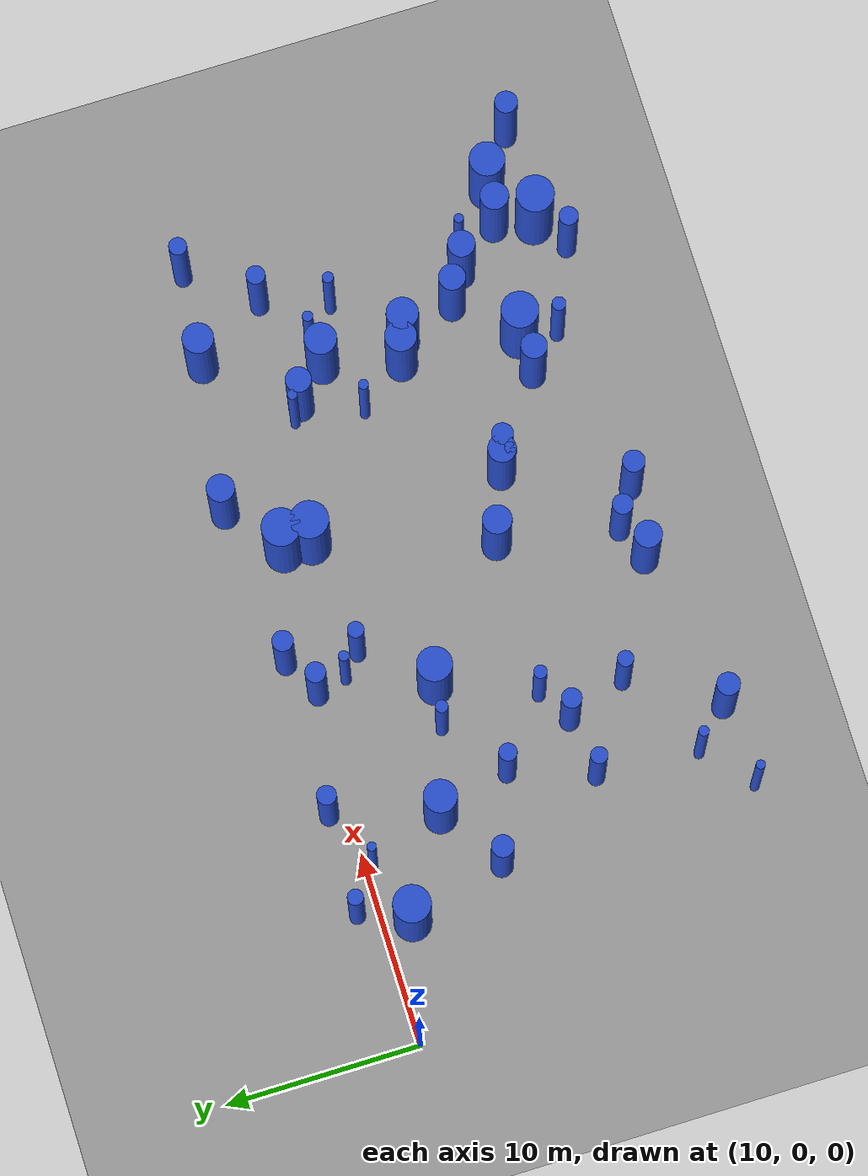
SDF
<sdf version="1.7">
 <world name="default">
  <model name="ground_plane_map">
   <static>1</static>
   <link name="link">
    <collision name="collision">
     <geometry><plane><normal>0 0 1</normal><size>110 50</size></plane></geometry>
     <surface>
      <contact><collide_without_contact>1</collide_without_contact></contact>
      <friction><ode><mu>100</mu><mu2>50</mu2></ode></friction>
     </surface>
    </collision>
    <visual name="visual">
     <cast_shadows>0</cast_shadows>
     <geometry><plane><normal>0 0 1</normal><size>110 50</size></plane></geometry>
     <material>
      <script><uri>file://media/materials/scripts/gazebo.material</uri><name>Gazebo/Grey</name></script>
     </material>
    </visual>
   </link>
   <pose>51 0 0 0 -0 0</pose>
  </model>
  <model name="0">
   <static>1</static>
   <link name="link">
    <inertial>
     <mass>2</mass>
     <inertia><ixx>6.32511</ixx><ixy>0</ixy><ixz>0</ixz><iyy>6.32511</iyy><iyz>0</iyz><izz>0.650222</izz></inertia>
    </inertial>
    <collision name="collision">
     <geometry><cylinder><length>6</length><radius>0.806364</radius></cylinder></geometry>
     <surface><contact><collide_without_contact>1</collide_without_contact></contact></surface>
    </collision>
    <visual name="visual">
     <geometry><cylinder><length>6</length><radius>0.806364</radius></cylinder></geometry>
     <material>
      <script><uri>file://media/materials/scripts/gazebo.material</uri><name>Gazebo/Blue</name></script>
     </material>
    </visual>
    <gravity>0</gravity>
   </link>
   <pose>43.1853 -9.25453 3 0 -0 0</pose>
  </model>
  <model name="17">
   <static>1</static>
   <link name="link">
    <inertial>
     <mass>2</mass>
     <inertia><ixx>6.09343</ixx><ixy>0</ixy><ixz>0</ixz><iyy>6.09343</iyy><iyz>0</iyz><izz>0.186852</izz></inertia>
    </inertial>
    <collision name="collision">
     <geometry><cylinder><length>6</length><radius>0.432264</radius></cylinder></geometry>
     <surface><contact><collide_without_contact>1</collide_without_contact></contact></surface>
    </collision>
    <visual name="visual">
     <geometry><cylinder><length>6</length><radius>0.432264</radius></cylinder></geometry>
     <material>
      <script><uri>file://media/materials/scripts/gazebo.material</uri><name>Gazebo/Blue</name></script>
     </material>
    </visual>
    <gravity>0</gravity>
   </link>
   <pose>20.2077 -12.26 3 0 -0 0</pose>
  </model>
  <model name="18">
   <static>1</static>
   <link name="link">
    <inertial>
     <mass>2</mass>
     <inertia><ixx>6.26305</ixx><ixy>0</ixy><ixz>0</ixz><iyy>6.26305</iyy><iyz>0</iyz><izz>0.5261</izz></inertia>
    </inertial>
    <collision name="collision">
     <geometry><cylinder><length>6</length><radius>0.725328</radius></cylinder></geometry>
     <surface><contact><collide_without_contact>1</collide_without_contact></contact></surface>
    </collision>
    <visual name="visual">
     <geometry><cylinder><length>6</length><radius>0.725328</radius></cylinder></geometry>
     <material>
      <script><uri>file://media/materials/scripts/gazebo.material</uri><name>Gazebo/Blue</name></script>
     </material>
    </visual>
    <gravity>0</gravity>
   </link>
   <pose>48.6871 -15.812 3 0 -0 0</pose>
  </model>
  <model name="34">
   <static>1</static>
   <link name="link">
    <inertial>
     <mass>2</mass>
     <inertia><ixx>6.25743</ixx><ixy>0</ixy><ixz>0</ixz><iyy>6.25743</iyy><iyz>0</iyz><izz>0.514864</izz></inertia>
    </inertial>
    <collision name="collision">
     <geometry><cylinder><length>6</length><radius>0.717541</radius></cylinder></geometry>
     <surface><contact><collide_without_contact>1</collide_without_contact></contact></surface>
    </collision>
    <visual name="visual">
     <geometry><cylinder><length>6</length><radius>0.717541</radius></cylinder></geometry>
     <material>
      <script><uri>file://media/materials/scripts/gazebo.material</uri><name>Gazebo/Blue</name></script>
     </material>
    </visual>
    <gravity>0</gravity>
   </link>
   <pose>36.2442 -12.3285 3 0 -0 0</pose>
  </model>
  <model name="39">
   <static>1</static>
   <link name="link">
    <inertial>
     <mass>2</mass>
     <inertia><ixx>6.22946</ixx><ixy>0</ixy><ixz>0</ixz><iyy>6.22946</iyy><iyz>0</iyz><izz>0.458916</izz></inertia>
    </inertial>
    <collision name="collision">
     <geometry><cylinder><length>6</length><radius>0.677433</radius></cylinder></geometry>
     <surface><contact><collide_without_contact>1</collide_without_contact></contact></surface>
    </collision>
    <visual name="visual">
     <geometry><cylinder><length>6</length><radius>0.677433</radius></cylinder></geometry>
     <material>
      <script><uri>file://media/materials/scripts/gazebo.material</uri><name>Gazebo/Blue</name></script>
     </material>
    </visual>
    <gravity>0</gravity>
   </link>
   <pose>45.3096 -12.5666 3 0 -0 0</pose>
  </model>
  <model name="48">
   <static>1</static>
   <link name="link">
    <inertial>
     <mass>2</mass>
     <inertia><ixx>6.2142</ixx><ixy>0</ixy><ixz>0</ixz><iyy>6.2142</iyy><iyz>0</iyz><izz>0.428398</izz></inertia>
    </inertial>
    <collision name="collision">
     <geometry><cylinder><length>6</length><radius>0.654521</radius></cylinder></geometry>
     <surface><contact><collide_without_contact>1</collide_without_contact></contact></surface>
    </collision>
    <visual name="visual">
     <geometry><cylinder><length>6</length><radius>0.654521</radius></cylinder></geometry>
     <material>
      <script><uri>file://media/materials/scripts/gazebo.material</uri><name>Gazebo/Blue</name></script>
     </material>
    </visual>
    <gravity>0</gravity>
   </link>
   <pose>42.5527 -3.78138 3 0 -0 0</pose>
  </model>
  <model name="50">
   <static>1</static>
   <link name="link">
    <inertial>
     <mass>2</mass>
     <inertia><ixx>6.08298</ixx><ixy>0</ixy><ixz>0</ixz><iyy>6.08298</iyy><iyz>0</iyz><izz>0.16596</izz></inertia>
    </inertial>
    <collision name="collision">
     <geometry><cylinder><length>6</length><radius>0.407382</radius></cylinder></geometry>
     <surface><contact><collide_without_contact>1</collide_without_contact></contact></surface>
    </collision>
    <visual name="visual">
     <geometry><cylinder><length>6</length><radius>0.407382</radius></cylinder></geometry>
     <material>
      <script><uri>file://media/materials/scripts/gazebo.material</uri><name>Gazebo/Blue</name></script>
     </material>
    </visual>
    <gravity>0</gravity>
   </link>
   <pose>17.0476 1.08046 3 0 -0 0</pose>
  </model>
  <model name="55">
   <static>1</static>
   <link name="link">
    <inertial>
     <mass>2</mass>
     <inertia><ixx>6.27588</ixx><ixy>0</ixy><ixz>0</ixz><iyy>6.27588</iyy><iyz>0</iyz><izz>0.55177</izz></inertia>
    </inertial>
    <collision name="collision">
     <geometry><cylinder><length>6</length><radius>0.742812</radius></cylinder></geometry>
     <surface><contact><collide_without_contact>1</collide_without_contact></contact></surface>
    </collision>
    <visual name="visual">
     <geometry><cylinder><length>6</length><radius>0.742812</radius></cylinder></geometry>
     <material>
      <script><uri>file://media/materials/scripts/gazebo.material</uri><name>Gazebo/Blue</name></script>
     </material>
    </visual>
    <gravity>0</gravity>
   </link>
   <pose>32.8908 -11.0334 3 0 -0 0</pose>
  </model>
  <model name="59">
   <static>1</static>
   <link name="link">
    <inertial>
     <mass>2</mass>
     <inertia>
      <ixx>6.03513</ixx>
      <ixy>0</ixy>
      <ixz>0</ixz>
      <iyy>6.03513</iyy>
      <iyz>0</iyz>
      <izz>0.0702655</izz>
     </inertia>
    </inertial>
    <collision name="collision">
     <geometry><cylinder><length>6</length><radius>0.265076</radius></cylinder></geometry>
     <surface><contact><collide_without_contact>1</collide_without_contact></contact></surface>
    </collision>
    <visual name="visual">
     <geometry><cylinder><length>6</length><radius>0.265076</radius></cylinder></geometry>
     <material>
      <script><uri>file://media/materials/scripts/gazebo.material</uri><name>Gazebo/Blue</name></script>
     </material>
    </visual>
    <gravity>0</gravity>
   </link>
   <pose>28.5908 -1.85594 3 0 -0 0</pose>
  </model>
  <model name="65">
   <static>1</static>
   <link name="link">
    <inertial>
     <mass>2</mass>
     <inertia><ixx>6.25355</ixx><ixy>0</ixy><ixz>0</ixz><iyy>6.25355</iyy><iyz>0</iyz><izz>0.507105</izz></inertia>
    </inertial>
    <collision name="collision">
     <geometry><cylinder><length>6</length><radius>0.712113</radius></cylinder></geometry>
     <surface><contact><collide_without_contact>1</collide_without_contact></contact></surface>
    </collision>
    <visual name="visual">
     <geometry><cylinder><length>6</length><radius>0.712113</radius></cylinder></geometry>
     <material>
      <script><uri>file://media/materials/scripts/gazebo.material</uri><name>Gazebo/Blue</name></script>
     </material>
    </visual>
    <gravity>0</gravity>
   </link>
   <pose>38.4266 1.46313 3 0 -0 0</pose>
  </model>
  <model name="71">
   <static>1</static>
   <link name="link">
    <inertial>
     <mass>2</mass>
     <inertia>
      <ixx>6.03294</ixx>
      <ixy>0</ixy>
      <ixz>0</ixz>
      <iyy>6.03294</iyy>
      <iyz>0</iyz>
      <izz>0.0658899</izz>
     </inertia>
    </inertial>
    <collision name="collision">
     <geometry><cylinder><length>6</length><radius>0.25669</radius></cylinder></geometry>
     <surface><contact><collide_without_contact>1</collide_without_contact></contact></surface>
    </collision>
    <visual name="visual">
     <geometry><cylinder><length>6</length><radius>0.25669</radius></cylinder></geometry>
     <material>
      <script><uri>file://media/materials/scripts/gazebo.material</uri><name>Gazebo/Blue</name></script>
     </material>
    </visual>
    <gravity>0</gravity>
   </link>
   <pose>41.3666 -6.77114 3 0 -0 0</pose>
  </model>
  <model name="73">
   <static>1</static>
   <link name="link">
    <inertial>
     <mass>2</mass>
     <inertia><ixx>6.48116</ixx><ixy>0</ixy><ixz>0</ixz><iyy>6.48116</iyy><iyz>0</iyz><izz>0.962329</izz></inertia>
    </inertial>
    <collision name="collision">
     <geometry><cylinder><length>6</length><radius>0.980984</radius></cylinder></geometry>
     <surface><contact><collide_without_contact>1</collide_without_contact></contact></surface>
    </collision>
    <visual name="visual">
     <geometry><cylinder><length>6</length><radius>0.980984</radius></cylinder></geometry>
     <material>
      <script><uri>file://media/materials/scripts/gazebo.material</uri><name>Gazebo/Blue</name></script>
     </material>
    </visual>
    <gravity>0</gravity>
   </link>
   <pose>35.6719 -0.795508 3 0 -0 0</pose>
  </model>
  <model name="80">
   <static>1</static>
   <link name="link">
    <inertial>
     <mass>2</mass>
     <inertia><ixx>6.33758</ixx><ixy>0</ixy><ixz>0</ixz><iyy>6.33758</iyy><iyz>0</iyz><izz>0.675158</izz></inertia>
    </inertial>
    <collision name="collision">
     <geometry><cylinder><length>6</length><radius>0.82168</radius></cylinder></geometry>
     <surface><contact><collide_without_contact>1</collide_without_contact></contact></surface>
    </collision>
    <visual name="visual">
     <geometry><cylinder><length>6</length><radius>0.82168</radius></cylinder></geometry>
     <material>
      <script><uri>file://media/materials/scripts/gazebo.material</uri><name>Gazebo/Blue</name></script>
     </material>
    </visual>
    <gravity>0</gravity>
   </link>
   <pose>44.2351 -5.42668 3 0 -0 0</pose>
  </model>
  <model name="87">
   <static>1</static>
   <link name="link">
    <inertial>
     <mass>2</mass>
     <inertia><ixx>6.10487</ixx><ixy>0</ixy><ixz>0</ixz><iyy>6.10487</iyy><iyz>0</iyz><izz>0.209735</izz></inertia>
    </inertial>
    <collision name="collision">
     <geometry><cylinder><length>6</length><radius>0.457968</radius></cylinder></geometry>
     <surface><contact><collide_without_contact>1</collide_without_contact></contact></surface>
    </collision>
    <visual name="visual">
     <geometry><cylinder><length>6</length><radius>0.457968</radius></cylinder></geometry>
     <material>
      <script><uri>file://media/materials/scripts/gazebo.material</uri><name>Gazebo/Blue</name></script>
     </material>
    </visual>
    <gravity>0</gravity>
   </link>
   <pose>50.8455 -0.052897 3 0 -0 0</pose>
  </model>
  <model name="107">
   <static>1</static>
   <link name="link">
    <inertial>
     <mass>2</mass>
     <inertia>
      <ixx>6.02823</ixx>
      <ixy>0</ixy>
      <ixz>0</ixz>
      <iyy>6.02823</iyy>
      <iyz>0</iyz>
      <izz>0.0564663</izz>
     </inertia>
    </inertial>
    <collision name="collision">
     <geometry><cylinder><length>6</length><radius>0.237626</radius></cylinder></geometry>
     <surface><contact><collide_without_contact>1</collide_without_contact></contact></surface>
    </collision>
    <visual name="visual">
     <geometry><cylinder><length>6</length><radius>0.237626</radius></cylinder></geometry>
     <material>
      <script><uri>file://media/materials/scripts/gazebo.material</uri><name>Gazebo/Blue</name></script>
     </material>
    </visual>
    <gravity>0</gravity>
   </link>
   <pose>48.1028 -13.7796 3 0 -0 0</pose>
  </model>
  <model name="121">
   <static>1</static>
   <link name="link">
    <inertial>
     <mass>2</mass>
     <inertia><ixx>6.44992</ixx><ixy>0</ixy><ixz>0</ixz><iyy>6.44992</iyy><iyz>0</iyz><izz>0.899849</izz></inertia>
    </inertial>
    <collision name="collision">
     <geometry><cylinder><length>6</length><radius>0.948604</radius></cylinder></geometry>
     <surface><contact><collide_without_contact>1</collide_without_contact></contact></surface>
    </collision>
    <visual name="visual">
     <geometry><cylinder><length>6</length><radius>0.948604</radius></cylinder></geometry>
     <material>
      <script><uri>file://media/materials/scripts/gazebo.material</uri><name>Gazebo/Blue</name></script>
     </material>
    </visual>
    <gravity>0</gravity>
   </link>
   <pose>42.7242 -15.2712 3 0 -0 0</pose>
  </model>
  <model name="138">
   <static>1</static>
   <link name="link">
    <inertial>
     <mass>2</mass>
     <inertia>
      <ixx>6.03582</ixx>
      <ixy>0</ixy>
      <ixz>0</ixz>
      <iyy>6.03582</iyy>
      <iyz>0</iyz>
      <izz>0.0716336</izz>
     </inertia>
    </inertial>
    <collision name="collision">
     <geometry><cylinder><length>6</length><radius>0.267645</radius></cylinder></geometry>
     <surface><contact><collide_without_contact>1</collide_without_contact></contact></surface>
    </collision>
    <visual name="visual">
     <geometry><cylinder><length>6</length><radius>0.267645</radius></cylinder></geometry>
     <material>
      <script><uri>file://media/materials/scripts/gazebo.material</uri><name>Gazebo/Blue</name></script>
     </material>
    </visual>
    <gravity>0</gravity>
   </link>
   <pose>45.5107 -5.15977 3 0 -0 0</pose>
  </model>
  <model name="139">
   <static>1</static>
   <link name="link">
    <inertial>
     <mass>2</mass>
     <inertia>
      <ixx>6.03033</ixx>
      <ixy>0</ixy>
      <ixz>0</ixz>
      <iyy>6.03033</iyy>
      <iyz>0</iyz>
      <izz>0.0606566</izz>
     </inertia>
    </inertial>
    <collision name="collision">
     <geometry><cylinder><length>6</length><radius>0.246286</radius></cylinder></geometry>
     <surface><contact><collide_without_contact>1</collide_without_contact></contact></surface>
    </collision>
    <visual name="visual">
     <geometry><cylinder><length>6</length><radius>0.246286</radius></cylinder></geometry>
     <material>
      <script><uri>file://media/materials/scripts/gazebo.material</uri><name>Gazebo/Blue</name></script>
     </material>
    </visual>
    <gravity>0</gravity>
   </link>
   <pose>41.9076 -3.27021 3 0 -0 0</pose>
  </model>
  <model name="140">
   <static>1</static>
   <link name="link">
    <inertial>
     <mass>2</mass>
     <inertia><ixx>6.10421</ixx><ixy>0</ixy><ixz>0</ixz><iyy>6.10421</iyy><iyz>0</iyz><izz>0.208426</izz></inertia>
    </inertial>
    <collision name="collision">
     <geometry><cylinder><length>6</length><radius>0.456537</radius></cylinder></geometry>
     <surface><contact><collide_without_contact>1</collide_without_contact></contact></surface>
    </collision>
    <visual name="visual">
     <geometry><cylinder><length>6</length><radius>0.456537</radius></cylinder></geometry>
     <material>
      <script><uri>file://media/materials/scripts/gazebo.material</uri><name>Gazebo/Blue</name></script>
     </material>
    </visual>
    <gravity>0</gravity>
   </link>
   <pose>21.6693 -8.07881 3 0 -0 0</pose>
  </model>
  <model name="143">
   <static>1</static>
   <link name="link">
    <inertial>
     <mass>2</mass>
     <inertia><ixx>6.33139</ixx><ixy>0</ixy><ixz>0</ixz><iyy>6.33139</iyy><iyz>0</iyz><izz>0.662779</izz></inertia>
    </inertial>
    <collision name="collision">
     <geometry><cylinder><length>6</length><radius>0.814113</radius></cylinder></geometry>
     <surface><contact><collide_without_contact>1</collide_without_contact></contact></surface>
    </collision>
    <visual name="visual">
     <geometry><cylinder><length>6</length><radius>0.814113</radius></cylinder></geometry>
     <material>
      <script><uri>file://media/materials/scripts/gazebo.material</uri><name>Gazebo/Blue</name></script>
     </material>
    </visual>
    <gravity>0</gravity>
   </link>
   <pose>44.2828 -9.67131 3 0 -0 0</pose>
  </model>
  <model name="144">
   <static>1</static>
   <link name="link">
    <inertial>
     <mass>2</mass>
     <inertia><ixx>6.45095</ixx><ixy>0</ixy><ixz>0</ixz><iyy>6.45095</iyy><iyz>0</iyz><izz>0.901899</izz></inertia>
    </inertial>
    <collision name="collision">
     <geometry><cylinder><length>6</length><radius>0.949684</radius></cylinder></geometry>
     <surface><contact><collide_without_contact>1</collide_without_contact></contact></surface>
    </collision>
    <visual name="visual">
     <geometry><cylinder><length>6</length><radius>0.949684</radius></cylinder></geometry>
     <material>
      <script><uri>file://media/materials/scripts/gazebo.material</uri><name>Gazebo/Blue</name></script>
     </material>
    </visual>
    <gravity>0</gravity>
   </link>
   <pose>15.9356 -1.43124 3 0 -0 0</pose>
  </model>
  <model name="145">
   <static>1</static>
   <link name="link">
    <inertial>
     <mass>2</mass>
     <inertia><ixx>6.17207</ixx><ixy>0</ixy><ixz>0</ixz><iyy>6.17207</iyy><iyz>0</iyz><izz>0.344135</izz></inertia>
    </inertial>
    <collision name="collision">
     <geometry><cylinder><length>6</length><radius>0.58663</radius></cylinder></geometry>
     <surface><contact><collide_without_contact>1</collide_without_contact></contact></surface>
    </collision>
    <visual name="visual">
     <geometry><cylinder><length>6</length><radius>0.58663</radius></cylinder></geometry>
     <material>
      <script><uri>file://media/materials/scripts/gazebo.material</uri><name>Gazebo/Blue</name></script>
     </material>
    </visual>
    <gravity>0</gravity>
   </link>
   <pose>21.7117 -19.3418 3 0 -0 0</pose>
  </model>
  <model name="151">
   <static>1</static>
   <link name="link">
    <inertial>
     <mass>2</mass>
     <inertia><ixx>6.22131</ixx><ixy>0</ixy><ixz>0</ixz><iyy>6.22131</iyy><iyz>0</iyz><izz>0.442615</izz></inertia>
    </inertial>
    <collision name="collision">
     <geometry><cylinder><length>6</length><radius>0.665293</radius></cylinder></geometry>
     <surface><contact><collide_without_contact>1</collide_without_contact></contact></surface>
    </collision>
    <visual name="visual">
     <geometry><cylinder><length>6</length><radius>0.665293</radius></cylinder></geometry>
     <material>
      <script><uri>file://media/materials/scripts/gazebo.material</uri><name>Gazebo/Blue</name></script>
     </material>
    </visual>
    <gravity>0</gravity>
   </link>
   <pose>40.7616 -15.3892 3 0 -0 0</pose>
  </model>
  <model name="155">
   <static>1</static>
   <link name="link">
    <inertial>
     <mass>2</mass>
     <inertia><ixx>6.14144</ixx><ixy>0</ixy><ixz>0</ixz><iyy>6.14144</iyy><iyz>0</iyz><izz>0.28288</izz></inertia>
    </inertial>
    <collision name="collision">
     <geometry><cylinder><length>6</length><radius>0.531864</radius></cylinder></geometry>
     <surface><contact><collide_without_contact>1</collide_without_contact></contact></surface>
    </collision>
    <visual name="visual">
     <geometry><cylinder><length>6</length><radius>0.531864</radius></cylinder></geometry>
     <material>
      <script><uri>file://media/materials/scripts/gazebo.material</uri><name>Gazebo/Blue</name></script>
     </material>
    </visual>
    <gravity>0</gravity>
   </link>
   <pose>30.1929 0.772266 3 0 -0 0</pose>
  </model>
  <model name="160">
   <static>1</static>
   <link name="link">
    <inertial>
     <mass>2</mass>
     <inertia><ixx>6.11676</ixx><ixy>0</ixy><ixz>0</ixz><iyy>6.11676</iyy><iyz>0</iyz><izz>0.233527</izz></inertia>
    </inertial>
    <collision name="collision">
     <geometry><cylinder><length>6</length><radius>0.483246</radius></cylinder></geometry>
     <surface><contact><collide_without_contact>1</collide_without_contact></contact></surface>
    </collision>
    <visual name="visual">
     <geometry><cylinder><length>6</length><radius>0.483246</radius></cylinder></geometry>
     <material>
      <script><uri>file://media/materials/scripts/gazebo.material</uri><name>Gazebo/Blue</name></script>
     </material>
    </visual>
    <gravity>0</gravity>
   </link>
   <pose>48.293 -3.31366 3 0 -0 0</pose>
  </model>
  <model name="168">
   <static>1</static>
   <link name="link">
    <inertial>
     <mass>2</mass>
     <inertia>
      <ixx>6.04043</ixx>
      <ixy>0</ixy>
      <ixz>0</ixz>
      <iyy>6.04043</iyy>
      <iyz>0</iyz>
      <izz>0.0808653</izz>
     </inertia>
    </inertial>
    <collision name="collision">
     <geometry><cylinder><length>6</length><radius>0.284368</radius></cylinder></geometry>
     <surface><contact><collide_without_contact>1</collide_without_contact></contact></surface>
    </collision>
    <visual name="visual">
     <geometry><cylinder><length>6</length><radius>0.284368</radius></cylinder></geometry>
     <material>
      <script><uri>file://media/materials/scripts/gazebo.material</uri><name>Gazebo/Blue</name></script>
     </material>
    </visual>
    <gravity>0</gravity>
   </link>
   <pose>47.1117 -6.69559 3 0 -0 0</pose>
  </model>
  <model name="172">
   <static>1</static>
   <link name="link">
    <inertial>
     <mass>2</mass>
     <inertia><ixx>6.13088</ixx><ixy>0</ixy><ixz>0</ixz><iyy>6.13088</iyy><iyz>0</iyz><izz>0.261764</izz></inertia>
    </inertial>
    <collision name="collision">
     <geometry><cylinder><length>6</length><radius>0.511629</radius></cylinder></geometry>
     <surface><contact><collide_without_contact>1</collide_without_contact></contact></surface>
    </collision>
    <visual name="visual">
     <geometry><cylinder><length>6</length><radius>0.511629</radius></cylinder></geometry>
     <material>
      <script><uri>file://media/materials/scripts/gazebo.material</uri><name>Gazebo/Blue</name></script>
     </material>
    </visual>
    <gravity>0</gravity>
   </link>
   <pose>23.3023 -11.8413 3 0 -0 0</pose>
  </model>
  <model name="174">
   <static>1</static>
   <link name="link">
    <inertial>
     <mass>2</mass>
     <inertia><ixx>6.03584</ixx><ixy>0</ixy><ixz>0</ixz><iyy>6.03584</iyy><iyz>0</iyz><izz>0.071677</izz></inertia>
    </inertial>
    <collision name="collision">
     <geometry><cylinder><length>6</length><radius>0.267726</radius></cylinder></geometry>
     <surface><contact><collide_without_contact>1</collide_without_contact></contact></surface>
    </collision>
    <visual name="visual">
     <geometry><cylinder><length>6</length><radius>0.267726</radius></cylinder></geometry>
     <material>
      <script><uri>file://media/materials/scripts/gazebo.material</uri><name>Gazebo/Blue</name></script>
     </material>
    </visual>
    <gravity>0</gravity>
   </link>
   <pose>19.8433 -17.4832 3 0 -0 0</pose>
  </model>
  <model name="180">
   <static>1</static>
   <link name="link">
    <inertial>
     <mass>2</mass>
     <inertia>
      <ixx>6.02762</ixx>
      <ixy>0</ixy>
      <ixz>0</ixz>
      <iyy>6.02762</iyy>
      <iyz>0</iyz>
      <izz>0.0552465</izz>
     </inertia>
    </inertial>
    <collision name="collision">
     <geometry><cylinder><length>6</length><radius>0.235046</radius></cylinder></geometry>
     <surface><contact><collide_without_contact>1</collide_without_contact></contact></surface>
    </collision>
    <visual name="visual">
     <geometry><cylinder><length>6</length><radius>0.235046</radius></cylinder></geometry>
     <material>
      <script><uri>file://media/materials/scripts/gazebo.material</uri><name>Gazebo/Blue</name></script>
     </material>
    </visual>
    <gravity>0</gravity>
   </link>
   <pose>17.4442 -19.6118 3 0 -0 0</pose>
  </model>
  <model name="184">
   <static>1</static>
   <link name="link">
    <inertial>
     <mass>2</mass>
     <inertia><ixx>6.15938</ixx><ixy>0</ixy><ixz>0</ixz><iyy>6.15938</iyy><iyz>0</iyz><izz>0.318768</izz></inertia>
    </inertial>
    <collision name="collision">
     <geometry><cylinder><length>6</length><radius>0.564596</radius></cylinder></geometry>
     <surface><contact><collide_without_contact>1</collide_without_contact></contact></surface>
    </collision>
    <visual name="visual">
     <geometry><cylinder><length>6</length><radius>0.564596</radius></cylinder></geometry>
     <material>
      <script><uri>file://media/materials/scripts/gazebo.material</uri><name>Gazebo/Blue</name></script>
     </material>
    </visual>
    <gravity>0</gravity>
   </link>
   <pose>33.7118 -18.3148 3 0 -0 0</pose>
  </model>
  <model name="185">
   <static>1</static>
   <link name="link">
    <inertial>
     <mass>2</mass>
     <inertia><ixx>6.12249</ixx><ixy>0</ixy><ixz>0</ixz><iyy>6.12249</iyy><iyz>0</iyz><izz>0.244989</izz></inertia>
    </inertial>
    <collision name="collision">
     <geometry><cylinder><length>6</length><radius>0.494963</radius></cylinder></geometry>
     <surface><contact><collide_without_contact>1</collide_without_contact></contact></surface>
    </collision>
    <visual name="visual">
     <geometry><cylinder><length>6</length><radius>0.494963</radius></cylinder></geometry>
     <material>
      <script><uri>file://media/materials/scripts/gazebo.material</uri><name>Gazebo/Blue</name></script>
     </material>
    </visual>
    <gravity>0</gravity>
   </link>
   <pose>22.2466 0.956316 3 0 -0 0</pose>
  </model>
  <model name="187">
   <static>1</static>
   <link name="link">
    <inertial>
     <mass>2</mass>
     <inertia><ixx>6.39427</ixx><ixy>0</ixy><ixz>0</ixz><iyy>6.39427</iyy><iyz>0</iyz><izz>0.788536</izz></inertia>
    </inertial>
    <collision name="collision">
     <geometry><cylinder><length>6</length><radius>0.887996</radius></cylinder></geometry>
     <surface><contact><collide_without_contact>1</collide_without_contact></contact></surface>
    </collision>
    <visual name="visual">
     <geometry><cylinder><length>6</length><radius>0.887996</radius></cylinder></geometry>
     <material>
      <script><uri>file://media/materials/scripts/gazebo.material</uri><name>Gazebo/Blue</name></script>
     </material>
    </visual>
    <gravity>0</gravity>
   </link>
   <pose>26.8997 -5.96522 3 0 -0 0</pose>
  </model>
  <model name="193">
   <static>1</static>
   <link name="link">
    <inertial>
     <mass>2</mass>
     <inertia>
      <ixx>6.02679</ixx>
      <ixy>0</ixy>
      <ixz>0</ixz>
      <iyy>6.02679</iyy>
      <iyz>0</iyz>
      <izz>0.0535836</izz>
     </inertia>
    </inertial>
    <collision name="collision">
     <geometry><cylinder><length>6</length><radius>0.231481</radius></cylinder></geometry>
     <surface><contact><collide_without_contact>1</collide_without_contact></contact></surface>
    </collision>
    <visual name="visual">
     <geometry><cylinder><length>6</length><radius>0.231481</radius></cylinder></geometry>
     <material>
      <script><uri>file://media/materials/scripts/gazebo.material</uri><name>Gazebo/Blue</name></script>
     </material>
    </visual>
    <gravity>0</gravity>
   </link>
   <pose>19.1869 -0.394839 3 0 -0 0</pose>
  </model>
  <model name="197">
   <static>1</static>
   <link name="link">
    <inertial>
     <mass>2</mass>
     <inertia><ixx>6.08355</ixx><ixy>0</ixy><ixz>0</ixz><iyy>6.08355</iyy><iyz>0</iyz><izz>0.16711</izz></inertia>
    </inertial>
    <collision name="collision">
     <geometry><cylinder><length>6</length><radius>0.40879</radius></cylinder></geometry>
     <surface><contact><collide_without_contact>1</collide_without_contact></contact></surface>
    </collision>
    <visual name="visual">
     <geometry><cylinder><length>6</length><radius>0.40879</radius></cylinder></geometry>
     <material>
      <script><uri>file://media/materials/scripts/gazebo.material</uri><name>Gazebo/Blue</name></script>
     </material>
    </visual>
    <gravity>0</gravity>
   </link>
   <pose>24.3981 -14.9391 3 0 -0 0</pose>
  </model>
  <model name="211">
   <static>1</static>
   <link name="link">
    <inertial>
     <mass>2</mass>
     <inertia><ixx>6.11853</ixx><ixy>0</ixy><ixz>0</ixz><iyy>6.11853</iyy><iyz>0</iyz><izz>0.237063</izz></inertia>
    </inertial>
    <collision name="collision">
     <geometry><cylinder><length>6</length><radius>0.486891</radius></cylinder></geometry>
     <surface><contact><collide_without_contact>1</collide_without_contact></contact></surface>
    </collision>
    <visual name="visual">
     <geometry><cylinder><length>6</length><radius>0.486891</radius></cylinder></geometry>
     <material>
      <script><uri>file://media/materials/scripts/gazebo.material</uri><name>Gazebo/Blue</name></script>
     </material>
    </visual>
    <gravity>0</gravity>
   </link>
   <pose>46.6035 -19.02 3 0 -0 0</pose>
  </model>
  <model name="216">
   <static>1</static>
   <link name="link">
    <inertial>
     <mass>2</mass>
     <inertia><ixx>6.46982</ixx><ixy>0</ixy><ixz>0</ixz><iyy>6.46982</iyy><iyz>0</iyz><izz>0.939645</izz></inertia>
    </inertial>
    <collision name="collision">
     <geometry><cylinder><length>6</length><radius>0.969353</radius></cylinder></geometry>
     <surface><contact><collide_without_contact>1</collide_without_contact></contact></surface>
    </collision>
    <visual name="visual">
     <geometry><cylinder><length>6</length><radius>0.969353</radius></cylinder></geometry>
     <material>
      <script><uri>file://media/materials/scripts/gazebo.material</uri><name>Gazebo/Blue</name></script>
     </material>
    </visual>
    <gravity>0</gravity>
   </link>
   <pose>35.6206 -2.23819 3 0 -0 0</pose>
  </model>
  <model name="222">
   <static>1</static>
   <link name="link">
    <inertial>
     <mass>2</mass>
     <inertia><ixx>6.15025</ixx><ixy>0</ixy><ixz>0</ixz><iyy>6.15025</iyy><iyz>0</iyz><izz>0.300491</izz></inertia>
    </inertial>
    <collision name="collision">
     <geometry><cylinder><length>6</length><radius>0.548171</radius></cylinder></geometry>
     <surface><contact><collide_without_contact>1</collide_without_contact></contact></surface>
    </collision>
    <visual name="visual">
     <geometry><cylinder><length>6</length><radius>0.548171</radius></cylinder></geometry>
     <material>
      <script><uri>file://media/materials/scripts/gazebo.material</uri><name>Gazebo/Blue</name></script>
     </material>
    </visual>
    <gravity>0</gravity>
   </link>
   <pose>36.9592 -12.5684 3 0 -0 0</pose>
  </model>
  <model name="231">
   <static>1</static>
   <link name="link">
    <inertial>
     <mass>2</mass>
     <inertia><ixx>6.24249</ixx><ixy>0</ixy><ixz>0</ixz><iyy>6.24249</iyy><iyz>0</iyz><izz>0.484984</izz></inertia>
    </inertial>
    <collision name="collision">
     <geometry><cylinder><length>6</length><radius>0.696408</radius></cylinder></geometry>
     <surface><contact><collide_without_contact>1</collide_without_contact></contact></surface>
    </collision>
    <visual name="visual">
     <geometry><cylinder><length>6</length><radius>0.696408</radius></cylinder></geometry>
     <material>
      <script><uri>file://media/materials/scripts/gazebo.material</uri><name>Gazebo/Blue</name></script>
     </material>
    </visual>
    <gravity>0</gravity>
   </link>
   <pose>46.8104 -13.5098 3 0 -0 0</pose>
  </model>
  <model name="234">
   <static>1</static>
   <link name="link">
    <inertial>
     <mass>2</mass>
     <inertia><ixx>6.05141</ixx><ixy>0</ixy><ixz>0</ixz><iyy>6.05141</iyy><iyz>0</iyz><izz>0.102815</izz></inertia>
    </inertial>
    <collision name="collision">
     <geometry><cylinder><length>6</length><radius>0.320647</radius></cylinder></geometry>
     <surface><contact><collide_without_contact>1</collide_without_contact></contact></surface>
    </collision>
    <visual name="visual">
     <geometry><cylinder><length>6</length><radius>0.320647</radius></cylinder></geometry>
     <material>
      <script><uri>file://media/materials/scripts/gazebo.material</uri><name>Gazebo/Blue</name></script>
     </material>
    </visual>
    <gravity>0</gravity>
   </link>
   <pose>24.7837 -5.67515 3 0 -0 0</pose>
  </model>
  <model name="235">
   <static>1</static>
   <link name="link">
    <inertial>
     <mass>2</mass>
     <inertia><ixx>6.13717</ixx><ixy>0</ixy><ixz>0</ixz><iyy>6.13717</iyy><iyz>0</iyz><izz>0.274334</izz></inertia>
    </inertial>
    <collision name="collision">
     <geometry><cylinder><length>6</length><radius>0.523769</radius></cylinder></geometry>
     <surface><contact><collide_without_contact>1</collide_without_contact></contact></surface>
    </collision>
    <visual name="visual">
     <geometry><cylinder><length>6</length><radius>0.523769</radius></cylinder></geometry>
     <material>
      <script><uri>file://media/materials/scripts/gazebo.material</uri><name>Gazebo/Blue</name></script>
     </material>
    </visual>
    <gravity>0</gravity>
   </link>
   <pose>28.2251 -0.299422 3 0 -0 0</pose>
  </model>
  <model name="254">
   <static>1</static>
   <link name="link">
    <inertial>
     <mass>2</mass>
     <inertia><ixx>6.08512</ixx><ixy>0</ixy><ixz>0</ixz><iyy>6.08512</iyy><iyz>0</iyz><izz>0.170244</izz></inertia>
    </inertial>
    <collision name="collision">
     <geometry><cylinder><length>6</length><radius>0.412607</radius></cylinder></geometry>
     <surface><contact><collide_without_contact>1</collide_without_contact></contact></surface>
    </collision>
    <visual name="visual">
     <geometry><cylinder><length>6</length><radius>0.412607</radius></cylinder></geometry>
     <material>
      <script><uri>file://media/materials/scripts/gazebo.material</uri><name>Gazebo/Blue</name></script>
     </material>
    </visual>
    <gravity>0</gravity>
   </link>
   <pose>29.6737 -2.79302 3 0 -0 0</pose>
  </model>
  <model name="264">
   <static>1</static>
   <link name="link">
    <inertial>
     <mass>2</mass>
     <inertia><ixx>6.31619</ixx><ixy>0</ixy><ixz>0</ixz><iyy>6.31619</iyy><iyz>0</iyz><izz>0.632389</izz></inertia>
    </inertial>
    <collision name="collision">
     <geometry><cylinder><length>6</length><radius>0.795229</radius></cylinder></geometry>
     <surface><contact><collide_without_contact>1</collide_without_contact></contact></surface>
    </collision>
    <visual name="visual">
     <geometry><cylinder><length>6</length><radius>0.795229</radius></cylinder></geometry>
     <material>
      <script><uri>file://media/materials/scripts/gazebo.material</uri><name>Gazebo/Blue</name></script>
     </material>
    </visual>
    <gravity>0</gravity>
   </link>
   <pose>46.0455 0.341807 3 0 -0 0</pose>
  </model>
  <model name="272">
   <static>1</static>
   <link name="link">
    <inertial>
     <mass>2</mass>
     <inertia><ixx>6.16761</ixx><ixy>0</ixy><ixz>0</ixz><iyy>6.16761</iyy><iyz>0</iyz><izz>0.335218</izz></inertia>
    </inertial>
    <collision name="collision">
     <geometry><cylinder><length>6</length><radius>0.57898</radius></cylinder></geometry>
     <surface><contact><collide_without_contact>1</collide_without_contact></contact></surface>
    </collision>
    <visual name="visual">
     <geometry><cylinder><length>6</length><radius>0.57898</radius></cylinder></geometry>
     <material>
      <script><uri>file://media/materials/scripts/gazebo.material</uri><name>Gazebo/Blue</name></script>
     </material>
    </visual>
    <gravity>0</gravity>
   </link>
   <pose>53.1442 -17.8057 3 0 -0 0</pose>
  </model>
  <model name="277">
   <static>1</static>
   <link name="link">
    <inertial>
     <mass>2</mass>
     <inertia><ixx>6.13695</ixx><ixy>0</ixy><ixz>0</ixz><iyy>6.13695</iyy><iyz>0</iyz><izz>0.273908</izz></inertia>
    </inertial>
    <collision name="collision">
     <geometry><cylinder><length>6</length><radius>0.523363</radius></cylinder></geometry>
     <surface><contact><collide_without_contact>1</collide_without_contact></contact></surface>
    </collision>
    <visual name="visual">
     <geometry><cylinder><length>6</length><radius>0.523363</radius></cylinder></geometry>
     <material>
      <script><uri>file://media/materials/scripts/gazebo.material</uri><name>Gazebo/Blue</name></script>
     </material>
    </visual>
    <gravity>0</gravity>
   </link>
   <pose>31.8127 -17.1454 3 0 -0 0</pose>
  </model>
  <model name="287">
   <static>1</static>
   <link name="link">
    <inertial>
     <mass>2</mass>
     <inertia><ixx>6.16071</ixx><ixy>0</ixy><ixz>0</ixz><iyy>6.16071</iyy><iyz>0</iyz><izz>0.321417</izz></inertia>
    </inertial>
    <collision name="collision">
     <geometry><cylinder><length>6</length><radius>0.566936</radius></cylinder></geometry>
     <surface><contact><collide_without_contact>1</collide_without_contact></contact></surface>
    </collision>
    <visual name="visual">
     <geometry><cylinder><length>6</length><radius>0.566936</radius></cylinder></geometry>
     <material>
      <script><uri>file://media/materials/scripts/gazebo.material</uri><name>Gazebo/Blue</name></script>
     </material>
    </visual>
    <gravity>0</gravity>
   </link>
   <pose>17.3252 -6.46476 3 0 -0 0</pose>
  </model>
  <model name="293">
   <static>1</static>
   <link name="link">
    <inertial>
     <mass>2</mass>
     <inertia><ixx>6.0629</ixx><ixy>0</ixy><ixz>0</ixz><iyy>6.0629</iyy><iyz>0</iyz><izz>0.125794</izz></inertia>
    </inertial>
    <collision name="collision">
     <geometry><cylinder><length>6</length><radius>0.354674</radius></cylinder></geometry>
     <surface><contact><collide_without_contact>1</collide_without_contact></contact></surface>
    </collision>
    <visual name="visual">
     <geometry><cylinder><length>6</length><radius>0.354674</radius></cylinder></geometry>
     <material>
      <script><uri>file://media/materials/scripts/gazebo.material</uri><name>Gazebo/Blue</name></script>
     </material>
    </visual>
    <gravity>0</gravity>
   </link>
   <pose>42.4447 -17.2078 3 0 -0 0</pose>
  </model>
  <model name="298">
   <static>1</static>
   <link name="link">
    <inertial>
     <mass>2</mass>
     <inertia><ixx>6.35442</ixx><ixy>0</ixy><ixz>0</ixz><iyy>6.35442</iyy><iyz>0</iyz><izz>0.708835</izz></inertia>
    </inertial>
    <collision name="collision">
     <geometry><cylinder><length>6</length><radius>0.841923</radius></cylinder></geometry>
     <surface><contact><collide_without_contact>1</collide_without_contact></contact></surface>
    </collision>
    <visual name="visual">
     <geometry><cylinder><length>6</length><radius>0.841923</radius></cylinder></geometry>
     <material>
      <script><uri>file://media/materials/scripts/gazebo.material</uri><name>Gazebo/Blue</name></script>
     </material>
    </visual>
    <gravity>0</gravity>
   </link>
   <pose>20.5705 -4.30448 3 0 -0 0</pose>
  </model>
  <model name="299">
   <static>1</static>
   <link name="link">
    <inertial>
     <mass>2</mass>
     <inertia>
      <ixx>6.04461</ixx>
      <ixy>0</ixy>
      <ixz>0</ixz>
      <iyy>6.04461</iyy>
      <iyz>0</iyz>
      <izz>0.0892172</izz>
     </inertia>
    </inertial>
    <collision name="collision">
     <geometry><cylinder><length>6</length><radius>0.298693</radius></cylinder></geometry>
     <surface><contact><collide_without_contact>1</collide_without_contact></contact></surface>
    </collision>
    <visual name="visual">
     <geometry><cylinder><length>6</length><radius>0.298693</radius></cylinder></geometry>
     <material>
      <script><uri>file://media/materials/scripts/gazebo.material</uri><name>Gazebo/Blue</name></script>
     </material>
    </visual>
    <gravity>0</gravity>
   </link>
   <pose>36.1676 -12.7236 3 0 -0 0</pose>
  </model>
  <model name="301">
   <static>1</static>
   <link name="link">
    <inertial>
     <mass>2</mass>
     <inertia><ixx>6.4026</ixx><ixy>0</ixy><ixz>0</ixz><iyy>6.4026</iyy><iyz>0</iyz><izz>0.805202</izz></inertia>
    </inertial>
    <collision name="collision">
     <geometry><cylinder><length>6</length><radius>0.89733</radius></cylinder></geometry>
     <surface><contact><collide_without_contact>1</collide_without_contact></contact></surface>
    </collision>
    <visual name="visual">
     <geometry><cylinder><length>6</length><radius>0.89733</radius></cylinder></geometry>
     <material>
      <script><uri>file://media/materials/scripts/gazebo.material</uri><name>Gazebo/Blue</name></script>
     </material>
    </visual>
    <gravity>0</gravity>
   </link>
   <pose>50.6103 -16.029 3 0 -0 0</pose>
  </model>
  <model name="304">
   <static>1</static>
   <link name="link">
    <inertial>
     <mass>2</mass>
     <inertia><ixx>6.46476</ixx><ixy>0</ixy><ixz>0</ixz><iyy>6.46476</iyy><iyz>0</iyz><izz>0.929523</izz></inertia>
    </inertial>
    <collision name="collision">
     <geometry><cylinder><length>6</length><radius>0.964118</radius></cylinder></geometry>
     <surface><contact><collide_without_contact>1</collide_without_contact></contact></surface>
    </collision>
    <visual name="visual">
     <geometry><cylinder><length>6</length><radius>0.964118</radius></cylinder></geometry>
     <material>
      <script><uri>file://media/materials/scripts/gazebo.material</uri><name>Gazebo/Blue</name></script>
     </material>
    </visual>
    <gravity>0</gravity>
   </link>
   <pose>48.1934 -17.7769 3 0 -0 0</pose>
  </model>
  <model name="305">
   <static>1</static>
   <link name="link">
    <inertial>
     <mass>2</mass>
     <inertia><ixx>6.2453</ixx><ixy>0</ixy><ixz>0</ixz><iyy>6.2453</iyy><iyz>0</iyz><izz>0.490596</izz></inertia>
    </inertial>
    <collision name="collision">
     <geometry><cylinder><length>6</length><radius>0.700426</radius></cylinder></geometry>
     <surface><contact><collide_without_contact>1</collide_without_contact></contact></surface>
    </collision>
    <visual name="visual">
     <geometry><cylinder><length>6</length><radius>0.700426</radius></cylinder></geometry>
     <material>
      <script><uri>file://media/materials/scripts/gazebo.material</uri><name>Gazebo/Blue</name></script>
     </material>
    </visual>
    <gravity>0</gravity>
   </link>
   <pose>30.0064 -17.879 3 0 -0 0</pose>
  </model>
  <model name="310">
   <static>1</static>
   <link name="link">
    <inertial>
     <mass>2</mass>
     <inertia><ixx>6.05645</ixx><ixy>0</ixy><ixz>0</ixz><iyy>6.05645</iyy><iyz>0</iyz><izz>0.112905</izz></inertia>
    </inertial>
    <collision name="collision">
     <geometry><cylinder><length>6</length><radius>0.336013</radius></cylinder></geometry>
     <surface><contact><collide_without_contact>1</collide_without_contact></contact></surface>
    </collision>
    <visual name="visual">
     <geometry><cylinder><length>6</length><radius>0.336013</radius></cylinder></geometry>
     <material>
      <script><uri>file://media/materials/scripts/gazebo.material</uri><name>Gazebo/Blue</name></script>
     </material>
    </visual>
    <gravity>0</gravity>
   </link>
   <pose>24.9946 -10.7743 3 0 -0 0</pose>
  </model>
 </world>
</sdf>
